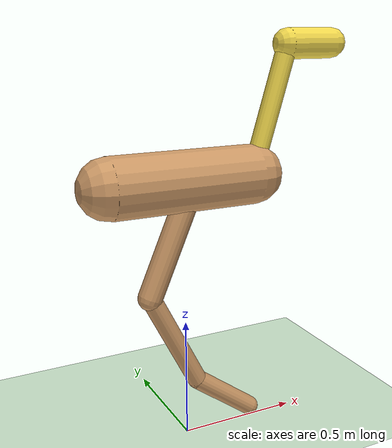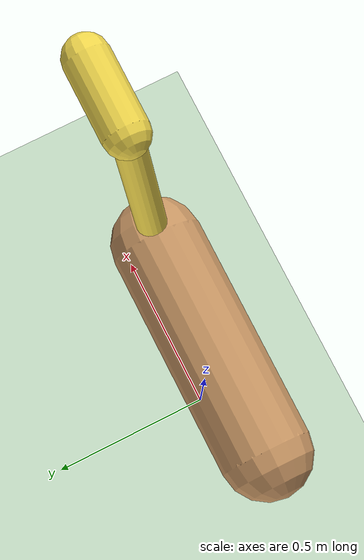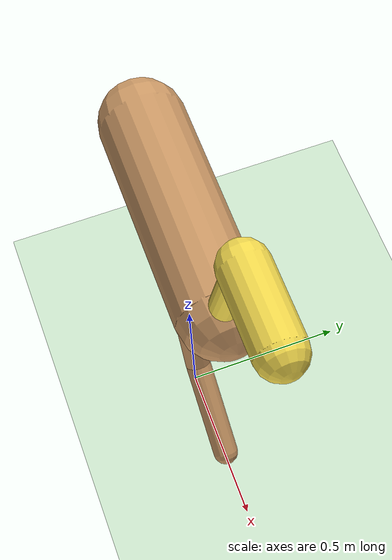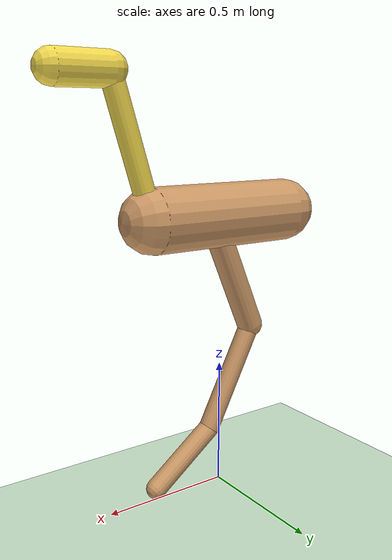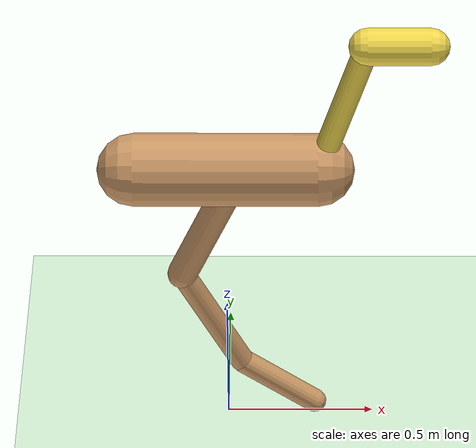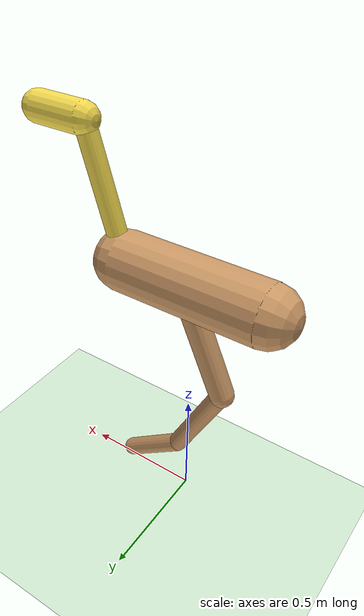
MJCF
<?xml version="1.0" encoding="utf-8"?>
<mujoco model="ostrich">
  <compiler angle="degree" inertiafromgeom="true" />
  <option integrator="RK4" timestep="0.002" />
  <visual>
    <global offwidth="1920" offheight="1080" />
  </visual>
  <default>
    <joint armature="0.01" damping="0.1" limited="true" />
    <geom conaffinity="0" condim="3" contype="1" density="1000" friction="0.9 0.1 0.1" rgba="0.8 0.6 0.4 1" />
  </default>
  <asset>
    <texture type="skybox" builtin="gradient" rgb1=".4 .5 .6" rgb2="0 0 0" width="100" height="100" />
    <texture builtin="checker" height="100" name="texplane" rgb1="0 0 0" rgb2="0.8 0.8 0.8" type="2d" width="100" />
    <material name="MatPlane" reflectance="0.5" shininess="1" specular="1" texrepeat="60 60" texture="texplane" />
  </asset>
  <worldbody>
    <light cutoff="100" diffuse="1 1 1" dir="0 0 -1.3" directional="true" exponent="1" pos="0 0 1.3" specular=".1 .1 .1" />
    <geom conaffinity="1" condim="3" name="floor" pos="0 0 0" rgba="0.8 0.9 0.8 1" size="100 100 100" type="plane" material="MatPlane" />
    <body name="torso" pos="0.0000 0.0000 1.0850">
      <camera name="track" mode="trackcom" pos="0 -3 -0.25" xyaxes="1 0 0 0 0 1" />
      <joint armature="0" axis="1 0 0" damping="0" limited="false" name="rootx" pos="0 0 0" stiffness="0" type="slide" />
      <joint armature="0" axis="0 0 1" damping="0" limited="false" name="rootz" pos="0 0 0" ref="1.0850" stiffness="0" type="slide" />
      <joint armature="0" axis="0 1 0" damping="0" limited="false" name="rooty" pos="0 0 0" stiffness="0" type="hinge" />
      <geom name="torso_geom" type="capsule" size="0.1200" rgba="0.8 0.6 0.4 1" friction="0.9" fromto="-0.3000 0.0000 0.0000 0.3000 0.0000 0.0000" />
      <body name="neck" pos="0.3000 0.0000 0.0000">
        <joint axis="0 -1 0" name="neck_joint" pos="0 0 0" range="-30 30" type="hinge" />
        <geom name="neck_geom" type="capsule" size="0.0400" friction="0.9" rgba="0.95 0.85 0.3 1" fromto="0.0000 0.0000 0.0000 0.1500 0.0000 0.5000" />
        <body name="head" pos="0.1500 0.0000 0.5000">
          <joint axis="0 -1 0" name="head_joint" pos="0 0 0" range="-20 20" type="hinge" />
          <geom name="head_geom" type="capsule" size="0.0600" friction="0.9" rgba="0.95 0.85 0.3 1" fromto="0.0000 0.0000 0.0000 0.2000 0.0000 0.0000" />
        </body>
      </body>
      <body name="thigh_r" pos="0.0000 0.0000 -0.1000">
        <joint axis="0 -1 0" name="thigh_r_joint" pos="0 0 0" range="-60 60" type="hinge" />
        <geom name="thigh_r_geom" type="capsule" size="0.0500" friction="0.9" rgba="0.8 0.6 0.4 1" fromto="0.0000 0.0000 0.0000 -0.1500 0.0000 -0.3500" />
        <body name="shin_r" pos="-0.1500 0.0000 -0.3500">
          <joint axis="0 -1 0" name="shin_r_joint" pos="0 0 0" range="-20 120" type="hinge" />
          <geom name="shin_r_geom" type="capsule" size="0.0400" friction="0.9" rgba="0.8 0.6 0.4 1" fromto="0.0000 0.0000 0.0000 0.2000 0.0000 -0.4000" />
          <body name="foot_r" pos="0.2000 0.0000 -0.4000">
            <joint axis="0 -1 0" name="foot_r_joint" pos="0 0 0" range="-45 45" type="hinge" />
            <geom name="foot_r_geom" type="capsule" size="0.0400" friction="1.9" rgba="0.8 0.6 0.4 1" fromto="0.0000 0.0000 0.0000 0.2500 0.0000 -0.1900" />
          </body>
        </body>
      </body>
      <body name="thigh_l" pos="0.0000 0.0000 -0.1000">
        <joint axis="0 -1 0" name="thigh_l_joint" pos="0 0 0" range="-60 60" type="hinge" />
        <geom name="thigh_l_geom" type="capsule" size="0.0500" friction="0.9" rgba="0.7 0.3 0.6 1" fromto="0.0000 0.0000 0.0000 -0.1500 0.0000 -0.3500" />
        <body name="shin_l" pos="-0.1500 0.0000 -0.3500">
          <joint axis="0 -1 0" name="shin_l_joint" pos="0 0 0" range="-20 120" type="hinge" />
          <geom name="shin_l_geom" type="capsule" size="0.0400" friction="0.9" rgba="0.7 0.3 0.6 1" fromto="0.0000 0.0000 0.0000 0.2000 0.0000 -0.4000" />
          <body name="foot_l" pos="0.2000 0.0000 -0.4000">
            <joint axis="0 -1 0" name="foot_l_joint" pos="0 0 0" range="-45 45" type="hinge" />
            <geom name="foot_l_geom" type="capsule" size="0.0400" friction="1.9" rgba="0.7 0.3 0.6 1" fromto="0.0000 0.0000 0.0000 0.2500 0.0000 -0.1900" />
          </body>
        </body>
      </body>
    </body>
  </worldbody>
  <actuator>
    <motor ctrllimited="true" ctrlrange="-1.0 1.0" gear="237.1" joint="thigh_r_joint" />
    <motor ctrllimited="true" ctrlrange="-1.0 1.0" gear="237.1" joint="shin_r_joint" />
    <motor ctrllimited="true" ctrlrange="-1.0 1.0" gear="237.1" joint="foot_r_joint" />
    <motor ctrllimited="true" ctrlrange="-1.0 1.0" gear="237.1" joint="thigh_l_joint" />
    <motor ctrllimited="true" ctrlrange="-1.0 1.0" gear="237.1" joint="shin_l_joint" />
    <motor ctrllimited="true" ctrlrange="-1.0 1.0" gear="237.1" joint="foot_l_joint" />
  </actuator>
</mujoco>
